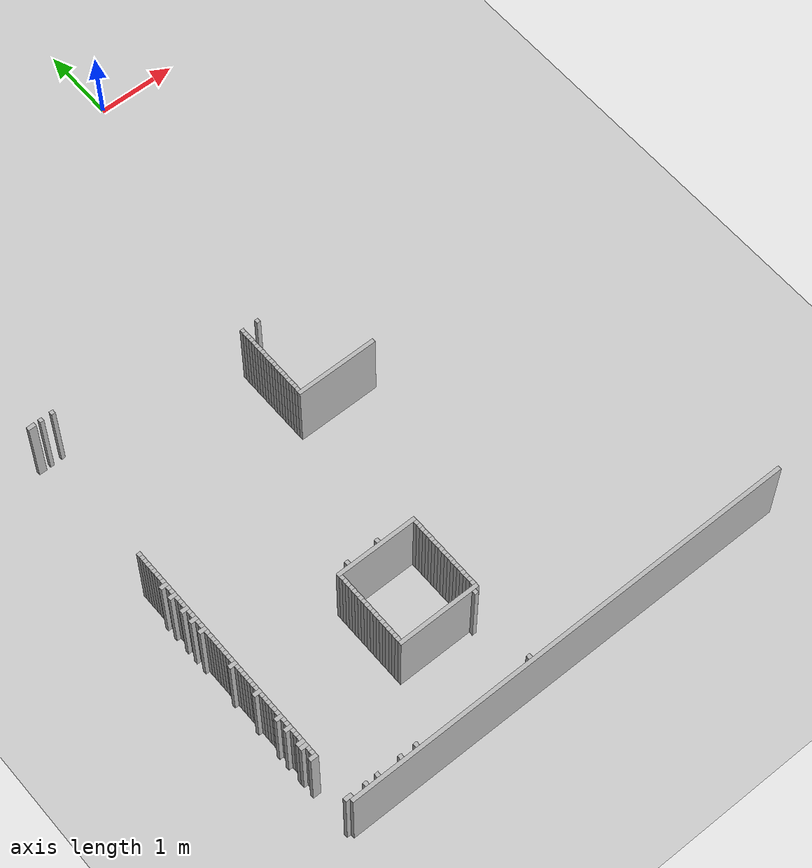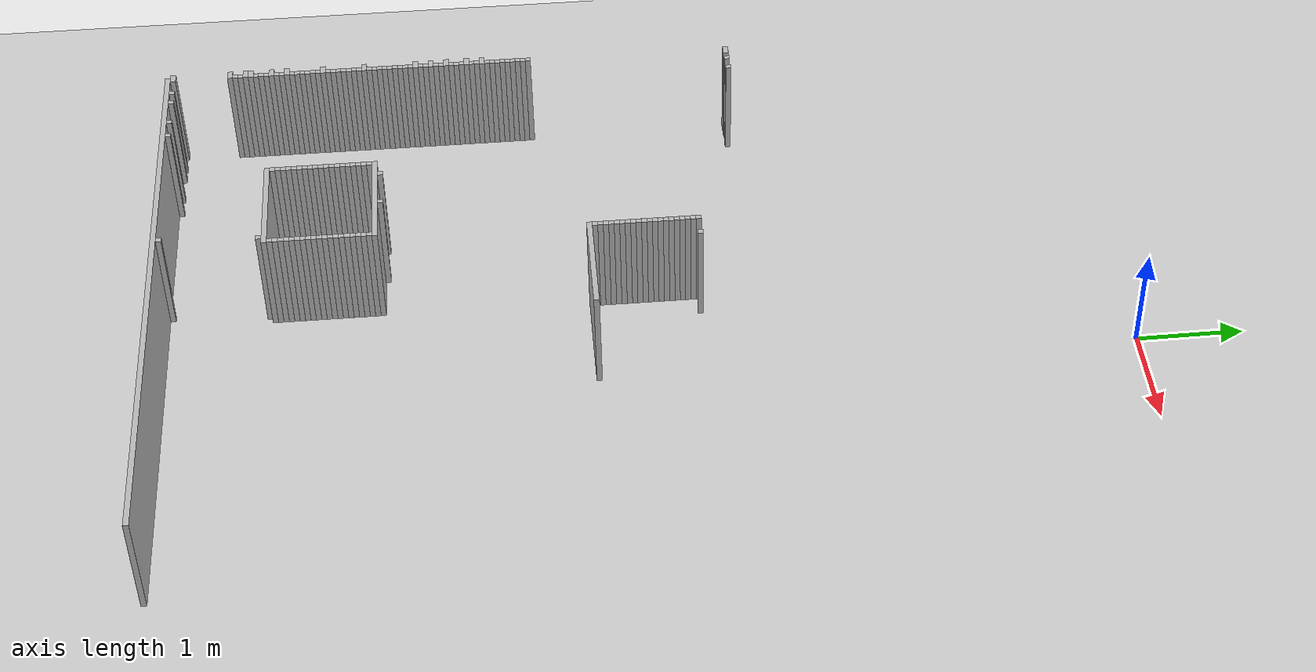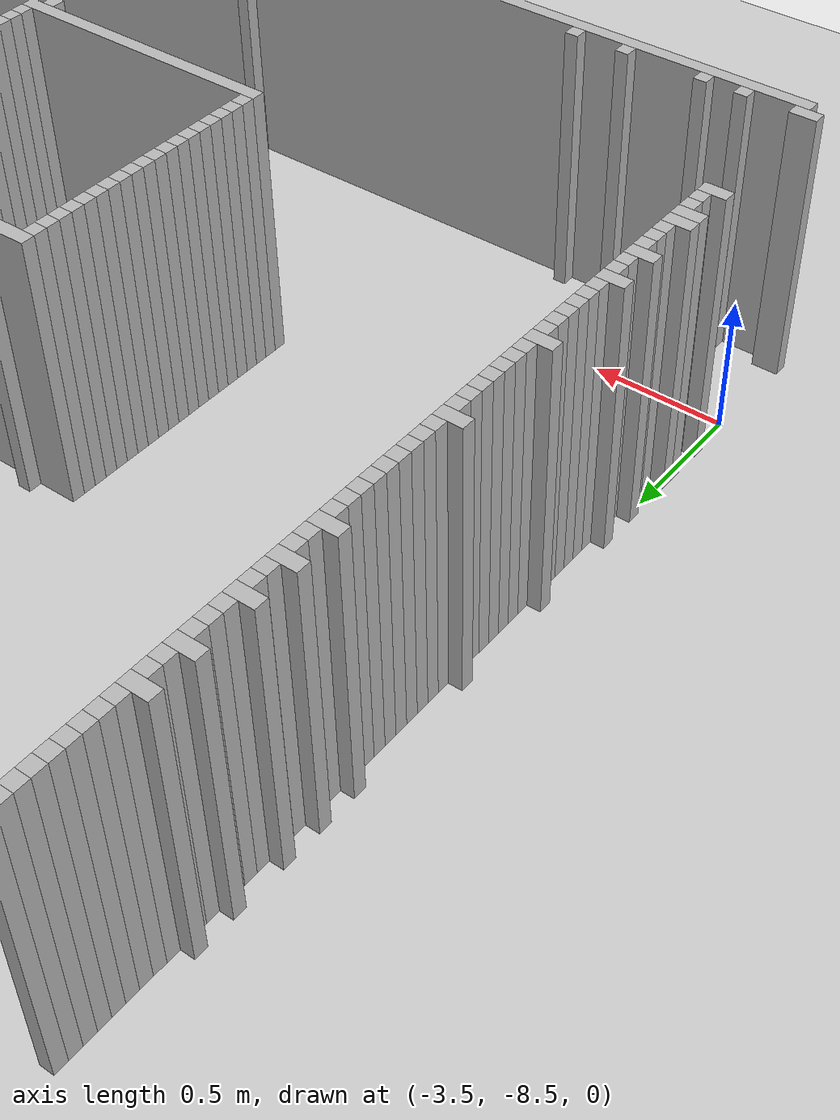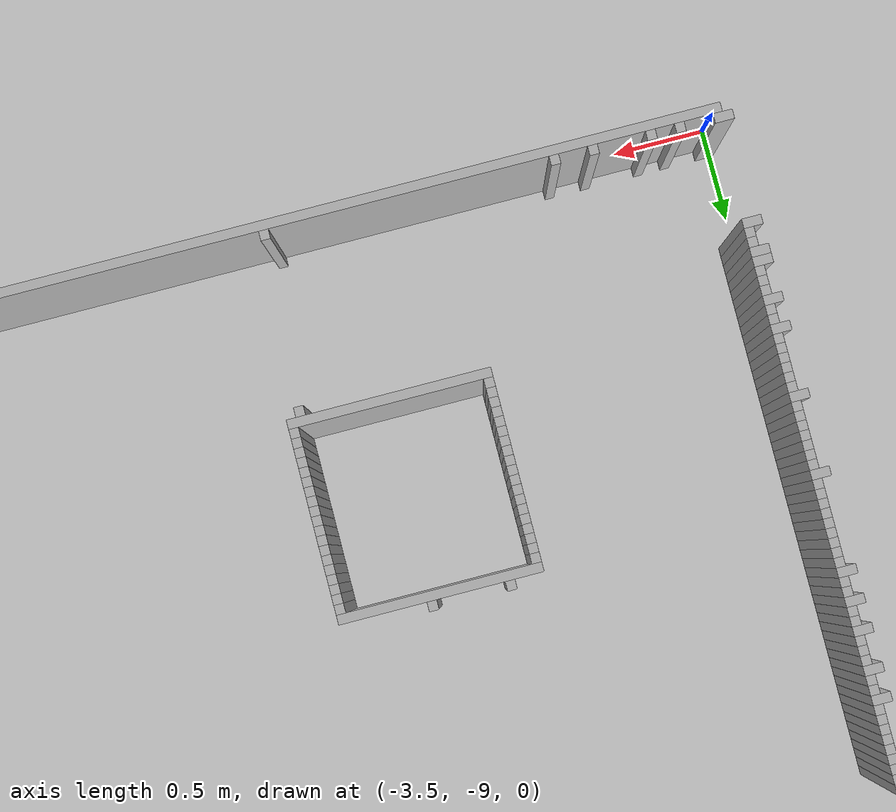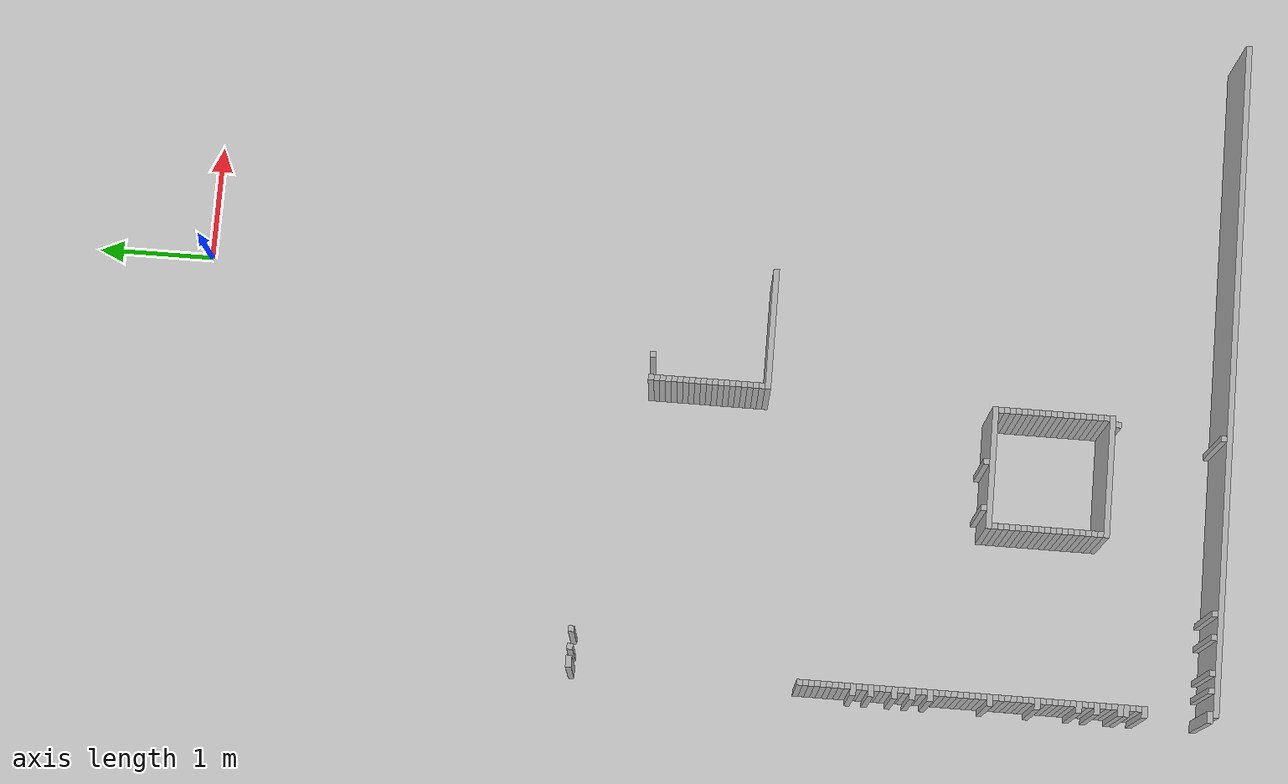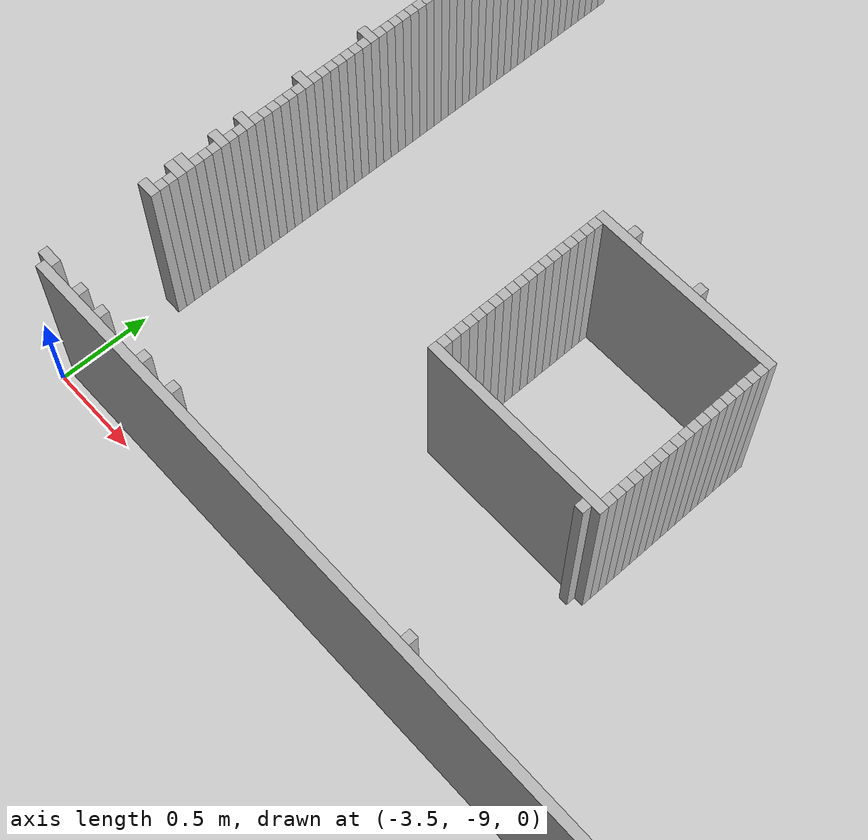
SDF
<sdf version="1.6">
 <world name="udh1_world">
  <include><uri>model://ground_plane</uri></include>
  <include><uri>model://sun</uri></include>
  <model name="wall_1834">
   <static>true</static>
   <pose>-3.419999999999999 -3.4800000000000004 0.5 0 0 0</pose>
   <link name="link">
    <collision name="col"><geometry><box><size>0.1 0.05 1</size></box></geometry></collision>
    <visual name="vis"><geometry><box><size>0.1 0.05 1</size></box></geometry></visual>
   </link>
  </model>
  <model name="wall_1835">
   <static>true</static>
   <pose>-3.294999999999999 -3.4800000000000004 0.5 0 0 0</pose>
   <link name="link">
    <collision name="col"><geometry><box><size>0.05 0.05 1</size></box></geometry></collision>
    <visual name="vis"><geometry><box><size>0.05 0.05 1</size></box></geometry></visual>
   </link>
  </model>
  <model name="wall_1836">
   <static>true</static>
   <pose>-3.1449999999999996 -3.4800000000000004 0.5 0 0 0</pose>
   <link name="link">
    <collision name="col"><geometry><box><size>0.05 0.05 1</size></box></geometry></collision>
    <visual name="vis"><geometry><box><size>0.05 0.05 1</size></box></geometry></visual>
   </link>
  </model>
  <model name="wall_1900">
   <static>true</static>
   <pose>-0.9449999999999985 -3.9800000000000004 0.5 0 0 0</pose>
   <link name="link">
    <collision name="col"><geometry><box><size>0.05 0.05 1</size></box></geometry></collision>
    <visual name="vis"><geometry><box><size>0.05 0.05 1</size></box></geometry></visual>
   </link>
  </model>
  <model name="wall_1901">
   <static>true</static>
   <pose>-0.7449999999999992 -3.9800000000000004 0.5 0 0 0</pose>
   <link name="link">
    <collision name="col"><geometry><box><size>0.05 0.05 1</size></box></geometry></collision>
    <visual name="vis"><geometry><box><size>0.05 0.05 1</size></box></geometry></visual>
   </link>
  </model>
  <model name="wall_1909">
   <static>true</static>
   <pose>-0.9449999999999985 -4.03 0.5 0 0 0</pose>
   <link name="link">
    <collision name="col"><geometry><box><size>0.05 0.05 1</size></box></geometry></collision>
    <visual name="vis"><geometry><box><size>0.05 0.05 1</size></box></geometry></visual>
   </link>
  </model>
  <model name="wall_1917">
   <static>true</static>
   <pose>-0.9449999999999985 -4.08 0.5 0 0 0</pose>
   <link name="link">
    <collision name="col"><geometry><box><size>0.05 0.05 1</size></box></geometry></collision>
    <visual name="vis"><geometry><box><size>0.05 0.05 1</size></box></geometry></visual>
   </link>
  </model>
  <model name="wall_1925">
   <static>true</static>
   <pose>-0.9449999999999985 -4.130000000000001 0.5 0 0 0</pose>
   <link name="link">
    <collision name="col"><geometry><box><size>0.05 0.05 1</size></box></geometry></collision>
    <visual name="vis"><geometry><box><size>0.05 0.05 1</size></box></geometry></visual>
   </link>
  </model>
  <model name="wall_1933">
   <static>true</static>
   <pose>-0.9449999999999985 -4.180000000000001 0.5 0 0 0</pose>
   <link name="link">
    <collision name="col"><geometry><box><size>0.05 0.05 1</size></box></geometry></collision>
    <visual name="vis"><geometry><box><size>0.05 0.05 1</size></box></geometry></visual>
   </link>
  </model>
  <model name="wall_1941">
   <static>true</static>
   <pose>-0.9449999999999985 -4.23 0.5 0 0 0</pose>
   <link name="link">
    <collision name="col"><geometry><box><size>0.05 0.05 1</size></box></geometry></collision>
    <visual name="vis"><geometry><box><size>0.05 0.05 1</size></box></geometry></visual>
   </link>
  </model>
  <model name="wall_1949">
   <static>true</static>
   <pose>-0.9449999999999985 -4.28 0.5 0 0 0</pose>
   <link name="link">
    <collision name="col"><geometry><box><size>0.05 0.05 1</size></box></geometry></collision>
    <visual name="vis"><geometry><box><size>0.05 0.05 1</size></box></geometry></visual>
   </link>
  </model>
  <model name="wall_1957">
   <static>true</static>
   <pose>-0.9449999999999985 -4.33 0.5 0 0 0</pose>
   <link name="link">
    <collision name="col"><geometry><box><size>0.05 0.05 1</size></box></geometry></collision>
    <visual name="vis"><geometry><box><size>0.05 0.05 1</size></box></geometry></visual>
   </link>
  </model>
  <model name="wall_1965">
   <static>true</static>
   <pose>-0.9449999999999985 -4.380000000000001 0.5 0 0 0</pose>
   <link name="link">
    <collision name="col"><geometry><box><size>0.05 0.05 1</size></box></geometry></collision>
    <visual name="vis"><geometry><box><size>0.05 0.05 1</size></box></geometry></visual>
   </link>
  </model>
  <model name="wall_1973">
   <static>true</static>
   <pose>-0.9449999999999985 -4.430000000000001 0.5 0 0 0</pose>
   <link name="link">
    <collision name="col"><geometry><box><size>0.05 0.05 1</size></box></geometry></collision>
    <visual name="vis"><geometry><box><size>0.05 0.05 1</size></box></geometry></visual>
   </link>
  </model>
  <model name="wall_1981">
   <static>true</static>
   <pose>-0.9449999999999985 -4.48 0.5 0 0 0</pose>
   <link name="link">
    <collision name="col"><geometry><box><size>0.05 0.05 1</size></box></geometry></collision>
    <visual name="vis"><geometry><box><size>0.05 0.05 1</size></box></geometry></visual>
   </link>
  </model>
  <model name="wall_1989">
   <static>true</static>
   <pose>-0.9449999999999985 -4.53 0.5 0 0 0</pose>
   <link name="link">
    <collision name="col"><geometry><box><size>0.05 0.05 1</size></box></geometry></collision>
    <visual name="vis"><geometry><box><size>0.05 0.05 1</size></box></geometry></visual>
   </link>
  </model>
  <model name="wall_1997">
   <static>true</static>
   <pose>-0.9449999999999985 -4.580000000000001 0.5 0 0 0</pose>
   <link name="link">
    <collision name="col"><geometry><box><size>0.05 0.05 1</size></box></geometry></collision>
    <visual name="vis"><geometry><box><size>0.05 0.05 1</size></box></geometry></visual>
   </link>
  </model>
  <model name="wall_2004">
   <static>true</static>
   <pose>-0.9449999999999985 -4.630000000000001 0.5 0 0 0</pose>
   <link name="link">
    <collision name="col"><geometry><box><size>0.05 0.05 1</size></box></geometry></collision>
    <visual name="vis"><geometry><box><size>0.05 0.05 1</size></box></geometry></visual>
   </link>
  </model>
  <model name="wall_2012">
   <static>true</static>
   <pose>-0.9449999999999985 -4.680000000000001 0.5 0 0 0</pose>
   <link name="link">
    <collision name="col"><geometry><box><size>0.05 0.05 1</size></box></geometry></collision>
    <visual name="vis"><geometry><box><size>0.05 0.05 1</size></box></geometry></visual>
   </link>
  </model>
  <model name="wall_2020">
   <static>true</static>
   <pose>-0.9449999999999985 -4.73 0.5 0 0 0</pose>
   <link name="link">
    <collision name="col"><geometry><box><size>0.05 0.05 1</size></box></geometry></collision>
    <visual name="vis"><geometry><box><size>0.05 0.05 1</size></box></geometry></visual>
   </link>
  </model>
  <model name="wall_2028">
   <static>true</static>
   <pose>-0.9449999999999985 -4.78 0.5 0 0 0</pose>
   <link name="link">
    <collision name="col"><geometry><box><size>0.05 0.05 1</size></box></geometry></collision>
    <visual name="vis"><geometry><box><size>0.05 0.05 1</size></box></geometry></visual>
   </link>
  </model>
  <model name="wall_2036">
   <static>true</static>
   <pose>-0.9449999999999985 -4.830000000000001 0.5 0 0 0</pose>
   <link name="link">
    <collision name="col"><geometry><box><size>0.05 0.05 1</size></box></geometry></collision>
    <visual name="vis"><geometry><box><size>0.05 0.05 1</size></box></geometry></visual>
   </link>
  </model>
  <model name="wall_2044">
   <static>true</static>
   <pose>-0.9449999999999985 -4.880000000000001 0.5 0 0 0</pose>
   <link name="link">
    <collision name="col"><geometry><box><size>0.05 0.05 1</size></box></geometry></collision>
    <visual name="vis"><geometry><box><size>0.05 0.05 1</size></box></geometry></visual>
   </link>
  </model>
  <model name="wall_2052">
   <static>true</static>
   <pose>-0.9449999999999985 -4.930000000000001 0.5 0 0 0</pose>
   <link name="link">
    <collision name="col"><geometry><box><size>0.05 0.05 1</size></box></geometry></collision>
    <visual name="vis"><geometry><box><size>0.05 0.05 1</size></box></geometry></visual>
   </link>
  </model>
  <model name="wall_2060">
   <static>true</static>
   <pose>-0.4449999999999985 -4.98 0.5 0 0 0</pose>
   <link name="link">
    <collision name="col"><geometry><box><size>1.05 0.05 1</size></box></geometry></collision>
    <visual name="vis"><geometry><box><size>1.05 0.05 1</size></box></geometry></visual>
   </link>
  </model>
  <model name="wall_2123">
   <static>true</static>
   <pose>-3.4449999999999994 -5.430000000000001 0.5 0 0 0</pose>
   <link name="link">
    <collision name="col"><geometry><box><size>0.05 0.05 1</size></box></geometry></collision>
    <visual name="vis"><geometry><box><size>0.05 0.05 1</size></box></geometry></visual>
   </link>
  </model>
  <model name="wall_2131">
   <static>true</static>
   <pose>-3.4449999999999994 -5.48 0.5 0 0 0</pose>
   <link name="link">
    <collision name="col"><geometry><box><size>0.05 0.05 1</size></box></geometry></collision>
    <visual name="vis"><geometry><box><size>0.05 0.05 1</size></box></geometry></visual>
   </link>
  </model>
  <model name="wall_2142">
   <static>true</static>
   <pose>-3.4449999999999994 -5.530000000000001 0.5 0 0 0</pose>
   <link name="link">
    <collision name="col"><geometry><box><size>0.05 0.05 1</size></box></geometry></collision>
    <visual name="vis"><geometry><box><size>0.05 0.05 1</size></box></geometry></visual>
   </link>
  </model>
  <model name="wall_2150">
   <static>true</static>
   <pose>-3.4449999999999994 -5.58 0.5 0 0 0</pose>
   <link name="link">
    <collision name="col"><geometry><box><size>0.05 0.05 1</size></box></geometry></collision>
    <visual name="vis"><geometry><box><size>0.05 0.05 1</size></box></geometry></visual>
   </link>
  </model>
  <model name="wall_2158">
   <static>true</static>
   <pose>-3.4449999999999994 -5.630000000000001 0.5 0 0 0</pose>
   <link name="link">
    <collision name="col"><geometry><box><size>0.05 0.05 1</size></box></geometry></collision>
    <visual name="vis"><geometry><box><size>0.05 0.05 1</size></box></geometry></visual>
   </link>
  </model>
  <model name="wall_2166">
   <static>true</static>
   <pose>-3.4449999999999994 -5.680000000000001 0.5 0 0 0</pose>
   <link name="link">
    <collision name="col"><geometry><box><size>0.05 0.05 1</size></box></geometry></collision>
    <visual name="vis"><geometry><box><size>0.05 0.05 1</size></box></geometry></visual>
   </link>
  </model>
  <model name="wall_2174">
   <static>true</static>
   <pose>-3.4449999999999994 -5.73 0.5 0 0 0</pose>
   <link name="link">
    <collision name="col"><geometry><box><size>0.05 0.05 1</size></box></geometry></collision>
    <visual name="vis"><geometry><box><size>0.05 0.05 1</size></box></geometry></visual>
   </link>
  </model>
  <model name="wall_2182">
   <static>true</static>
   <pose>-3.4449999999999994 -5.780000000000001 0.5 0 0 0</pose>
   <link name="link">
    <collision name="col"><geometry><box><size>0.05 0.05 1</size></box></geometry></collision>
    <visual name="vis"><geometry><box><size>0.05 0.05 1</size></box></geometry></visual>
   </link>
  </model>
  <model name="wall_2190">
   <static>true</static>
   <pose>-3.4449999999999994 -5.83 0.5 0 0 0</pose>
   <link name="link">
    <collision name="col"><geometry><box><size>0.05 0.05 1</size></box></geometry></collision>
    <visual name="vis"><geometry><box><size>0.05 0.05 1</size></box></geometry></visual>
   </link>
  </model>
  <model name="wall_2198">
   <static>true</static>
   <pose>-3.469999999999999 -5.880000000000001 0.5 0 0 0</pose>
   <link name="link">
    <collision name="col"><geometry><box><size>0.1 0.05 1</size></box></geometry></collision>
    <visual name="vis"><geometry><box><size>0.1 0.05 1</size></box></geometry></visual>
   </link>
  </model>
  <model name="wall_2206">
   <static>true</static>
   <pose>-3.4449999999999994 -5.930000000000001 0.5 0 0 0</pose>
   <link name="link">
    <collision name="col"><geometry><box><size>0.05 0.05 1</size></box></geometry></collision>
    <visual name="vis"><geometry><box><size>0.05 0.05 1</size></box></geometry></visual>
   </link>
  </model>
  <model name="wall_2214">
   <static>true</static>
   <pose>-3.4449999999999994 -5.98 0.5 0 0 0</pose>
   <link name="link">
    <collision name="col"><geometry><box><size>0.05 0.05 1</size></box></geometry></collision>
    <visual name="vis"><geometry><box><size>0.05 0.05 1</size></box></geometry></visual>
   </link>
  </model>
  <model name="wall_2222">
   <static>true</static>
   <pose>-3.469999999999999 -6.030000000000001 0.5 0 0 0</pose>
   <link name="link">
    <collision name="col"><geometry><box><size>0.1 0.05 1</size></box></geometry></collision>
    <visual name="vis"><geometry><box><size>0.1 0.05 1</size></box></geometry></visual>
   </link>
  </model>
  <model name="wall_2230">
   <static>true</static>
   <pose>-3.4449999999999994 -6.08 0.5 0 0 0</pose>
   <link name="link">
    <collision name="col"><geometry><box><size>0.05 0.05 1</size></box></geometry></collision>
    <visual name="vis"><geometry><box><size>0.05 0.05 1</size></box></geometry></visual>
   </link>
  </model>
  <model name="wall_2238">
   <static>true</static>
   <pose>-3.4449999999999994 -6.130000000000001 0.5 0 0 0</pose>
   <link name="link">
    <collision name="col"><geometry><box><size>0.05 0.05 1</size></box></geometry></collision>
    <visual name="vis"><geometry><box><size>0.05 0.05 1</size></box></geometry></visual>
   </link>
  </model>
  <model name="wall_2246">
   <static>true</static>
   <pose>-3.4449999999999994 -6.180000000000001 0.5 0 0 0</pose>
   <link name="link">
    <collision name="col"><geometry><box><size>0.05 0.05 1</size></box></geometry></collision>
    <visual name="vis"><geometry><box><size>0.05 0.05 1</size></box></geometry></visual>
   </link>
  </model>
  <model name="wall_2254">
   <static>true</static>
   <pose>-3.469999999999999 -6.23 0.5 0 0 0</pose>
   <link name="link">
    <collision name="col"><geometry><box><size>0.1 0.05 1</size></box></geometry></collision>
    <visual name="vis"><geometry><box><size>0.1 0.05 1</size></box></geometry></visual>
   </link>
  </model>
  <model name="wall_2262">
   <static>true</static>
   <pose>-3.4449999999999994 -6.280000000000001 0.5 0 0 0</pose>
   <link name="link">
    <collision name="col"><geometry><box><size>0.05 0.05 1</size></box></geometry></collision>
    <visual name="vis"><geometry><box><size>0.05 0.05 1</size></box></geometry></visual>
   </link>
  </model>
  <model name="wall_2270">
   <static>true</static>
   <pose>-3.4449999999999994 -6.33 0.5 0 0 0</pose>
   <link name="link">
    <collision name="col"><geometry><box><size>0.05 0.05 1</size></box></geometry></collision>
    <visual name="vis"><geometry><box><size>0.05 0.05 1</size></box></geometry></visual>
   </link>
  </model>
  <model name="wall_2278">
   <static>true</static>
   <pose>-3.469999999999999 -6.380000000000001 0.5 0 0 0</pose>
   <link name="link">
    <collision name="col"><geometry><box><size>0.1 0.05 1</size></box></geometry></collision>
    <visual name="vis"><geometry><box><size>0.1 0.05 1</size></box></geometry></visual>
   </link>
  </model>
  <model name="wall_2285">
   <static>true</static>
   <pose>-3.4449999999999994 -6.430000000000001 0.5 0 0 0</pose>
   <link name="link">
    <collision name="col"><geometry><box><size>0.05 0.05 1</size></box></geometry></collision>
    <visual name="vis"><geometry><box><size>0.05 0.05 1</size></box></geometry></visual>
   </link>
  </model>
  <model name="wall_2291">
   <static>true</static>
   <pose>-3.4449999999999994 -6.48 0.5 0 0 0</pose>
   <link name="link">
    <collision name="col"><geometry><box><size>0.05 0.05 1</size></box></geometry></collision>
    <visual name="vis"><geometry><box><size>0.05 0.05 1</size></box></geometry></visual>
   </link>
  </model>
  <model name="wall_2297">
   <static>true</static>
   <pose>-3.469999999999999 -6.530000000000001 0.5 0 0 0</pose>
   <link name="link">
    <collision name="col"><geometry><box><size>0.1 0.05 1</size></box></geometry></collision>
    <visual name="vis"><geometry><box><size>0.1 0.05 1</size></box></geometry></visual>
   </link>
  </model>
  <model name="wall_2303">
   <static>true</static>
   <pose>-3.4449999999999994 -6.58 0.5 0 0 0</pose>
   <link name="link">
    <collision name="col"><geometry><box><size>0.05 0.05 1</size></box></geometry></collision>
    <visual name="vis"><geometry><box><size>0.05 0.05 1</size></box></geometry></visual>
   </link>
  </model>
  <model name="wall_2308">
   <static>true</static>
   <pose>-3.4449999999999994 -6.630000000000001 0.5 0 0 0</pose>
   <link name="link">
    <collision name="col"><geometry><box><size>0.05 0.05 1</size></box></geometry></collision>
    <visual name="vis"><geometry><box><size>0.05 0.05 1</size></box></geometry></visual>
   </link>
  </model>
  <model name="wall_2314">
   <static>true</static>
   <pose>-3.4449999999999994 -6.680000000000001 0.5 0 0 0</pose>
   <link name="link">
    <collision name="col"><geometry><box><size>0.05 0.05 1</size></box></geometry></collision>
    <visual name="vis"><geometry><box><size>0.05 0.05 1</size></box></geometry></visual>
   </link>
  </model>
  <model name="wall_2318">
   <static>true</static>
   <pose>-3.4449999999999994 -6.73 0.5 0 0 0</pose>
   <link name="link">
    <collision name="col"><geometry><box><size>0.05 0.05 1</size></box></geometry></collision>
    <visual name="vis"><geometry><box><size>0.05 0.05 1</size></box></geometry></visual>
   </link>
  </model>
  <model name="wall_2322">
   <static>true</static>
   <pose>-3.4449999999999994 -6.780000000000001 0.5 0 0 0</pose>
   <link name="link">
    <collision name="col"><geometry><box><size>0.05 0.05 1</size></box></geometry></collision>
    <visual name="vis"><geometry><box><size>0.05 0.05 1</size></box></geometry></visual>
   </link>
  </model>
  <model name="wall_2326">
   <static>true</static>
   <pose>-3.4449999999999994 -6.83 0.5 0 0 0</pose>
   <link name="link">
    <collision name="col"><geometry><box><size>0.05 0.05 1</size></box></geometry></collision>
    <visual name="vis"><geometry><box><size>0.05 0.05 1</size></box></geometry></visual>
   </link>
  </model>
  <model name="wall_2330">
   <static>true</static>
   <pose>-3.4449999999999994 -6.880000000000001 0.5 0 0 0</pose>
   <link name="link">
    <collision name="col"><geometry><box><size>0.05 0.05 1</size></box></geometry></collision>
    <visual name="vis"><geometry><box><size>0.05 0.05 1</size></box></geometry></visual>
   </link>
  </model>
  <model name="wall_2331">
   <static>true</static>
   <pose>-1.8449999999999989 -6.880000000000001 0.5 0 0 0</pose>
   <link name="link">
    <collision name="col"><geometry><box><size>0.05 0.05 1</size></box></geometry></collision>
    <visual name="vis"><geometry><box><size>0.05 0.05 1</size></box></geometry></visual>
   </link>
  </model>
  <model name="wall_2332">
   <static>true</static>
   <pose>-1.4449999999999994 -6.880000000000001 0.5 0 0 0</pose>
   <link name="link">
    <collision name="col"><geometry><box><size>0.05 0.05 1</size></box></geometry></collision>
    <visual name="vis"><geometry><box><size>0.05 0.05 1</size></box></geometry></visual>
   </link>
  </model>
  <model name="wall_2336">
   <static>true</static>
   <pose>-3.4449999999999994 -6.930000000000001 0.5 0 0 0</pose>
   <link name="link">
    <collision name="col"><geometry><box><size>0.05 0.05 1</size></box></geometry></collision>
    <visual name="vis"><geometry><box><size>0.05 0.05 1</size></box></geometry></visual>
   </link>
  </model>
  <model name="wall_2337">
   <static>true</static>
   <pose>-1.4949999999999992 -6.930000000000001 0.5 0 0 0</pose>
   <link name="link">
    <collision name="col"><geometry><box><size>1.05 0.05 1</size></box></geometry></collision>
    <visual name="vis"><geometry><box><size>1.05 0.05 1</size></box></geometry></visual>
   </link>
  </model>
  <model name="wall_2341">
   <static>true</static>
   <pose>-3.4449999999999994 -6.98 0.5 0 0 0</pose>
   <link name="link">
    <collision name="col"><geometry><box><size>0.05 0.05 1</size></box></geometry></collision>
    <visual name="vis"><geometry><box><size>0.05 0.05 1</size></box></geometry></visual>
   </link>
  </model>
  <model name="wall_2342">
   <static>true</static>
   <pose>-1.9949999999999992 -6.98 0.5 0 0 0</pose>
   <link name="link">
    <collision name="col"><geometry><box><size>0.05 0.05 1</size></box></geometry></collision>
    <visual name="vis"><geometry><box><size>0.05 0.05 1</size></box></geometry></visual>
   </link>
  </model>
  <model name="wall_2343">
   <static>true</static>
   <pose>-0.9949999999999992 -6.98 0.5 0 0 0</pose>
   <link name="link">
    <collision name="col"><geometry><box><size>0.05 0.05 1</size></box></geometry></collision>
    <visual name="vis"><geometry><box><size>0.05 0.05 1</size></box></geometry></visual>
   </link>
  </model>
  <model name="wall_2347">
   <static>true</static>
   <pose>-3.469999999999999 -7.030000000000001 0.5 0 0 0</pose>
   <link name="link">
    <collision name="col"><geometry><box><size>0.1 0.05 1</size></box></geometry></collision>
    <visual name="vis"><geometry><box><size>0.1 0.05 1</size></box></geometry></visual>
   </link>
  </model>
  <model name="wall_2348">
   <static>true</static>
   <pose>-1.9949999999999992 -7.030000000000001 0.5 0 0 0</pose>
   <link name="link">
    <collision name="col"><geometry><box><size>0.05 0.05 1</size></box></geometry></collision>
    <visual name="vis"><geometry><box><size>0.05 0.05 1</size></box></geometry></visual>
   </link>
  </model>
  <model name="wall_2349">
   <static>true</static>
   <pose>-0.9949999999999992 -7.030000000000001 0.5 0 0 0</pose>
   <link name="link">
    <collision name="col"><geometry><box><size>0.05 0.05 1</size></box></geometry></collision>
    <visual name="vis"><geometry><box><size>0.05 0.05 1</size></box></geometry></visual>
   </link>
  </model>
  <model name="wall_2353">
   <static>true</static>
   <pose>-3.4449999999999994 -7.08 0.5 0 0 0</pose>
   <link name="link">
    <collision name="col"><geometry><box><size>0.05 0.05 1</size></box></geometry></collision>
    <visual name="vis"><geometry><box><size>0.05 0.05 1</size></box></geometry></visual>
   </link>
  </model>
  <model name="wall_2354">
   <static>true</static>
   <pose>-1.9949999999999992 -7.08 0.5 0 0 0</pose>
   <link name="link">
    <collision name="col"><geometry><box><size>0.05 0.05 1</size></box></geometry></collision>
    <visual name="vis"><geometry><box><size>0.05 0.05 1</size></box></geometry></visual>
   </link>
  </model>
  <model name="wall_2355">
   <static>true</static>
   <pose>-0.9949999999999992 -7.08 0.5 0 0 0</pose>
   <link name="link">
    <collision name="col"><geometry><box><size>0.05 0.05 1</size></box></geometry></collision>
    <visual name="vis"><geometry><box><size>0.05 0.05 1</size></box></geometry></visual>
   </link>
  </model>
  <model name="wall_2359">
   <static>true</static>
   <pose>-3.4449999999999994 -7.130000000000001 0.5 0 0 0</pose>
   <link name="link">
    <collision name="col"><geometry><box><size>0.05 0.05 1</size></box></geometry></collision>
    <visual name="vis"><geometry><box><size>0.05 0.05 1</size></box></geometry></visual>
   </link>
  </model>
  <model name="wall_2360">
   <static>true</static>
   <pose>-1.9949999999999992 -7.130000000000001 0.5 0 0 0</pose>
   <link name="link">
    <collision name="col"><geometry><box><size>0.05 0.05 1</size></box></geometry></collision>
    <visual name="vis"><geometry><box><size>0.05 0.05 1</size></box></geometry></visual>
   </link>
  </model>
  <model name="wall_2361">
   <static>true</static>
   <pose>-0.9949999999999992 -7.130000000000001 0.5 0 0 0</pose>
   <link name="link">
    <collision name="col"><geometry><box><size>0.05 0.05 1</size></box></geometry></collision>
    <visual name="vis"><geometry><box><size>0.05 0.05 1</size></box></geometry></visual>
   </link>
  </model>
  <model name="wall_2365">
   <static>true</static>
   <pose>-3.4449999999999994 -7.180000000000001 0.5 0 0 0</pose>
   <link name="link">
    <collision name="col"><geometry><box><size>0.05 0.05 1</size></box></geometry></collision>
    <visual name="vis"><geometry><box><size>0.05 0.05 1</size></box></geometry></visual>
   </link>
  </model>
  <model name="wall_2366">
   <static>true</static>
   <pose>-1.9949999999999992 -7.180000000000001 0.5 0 0 0</pose>
   <link name="link">
    <collision name="col"><geometry><box><size>0.05 0.05 1</size></box></geometry></collision>
    <visual name="vis"><geometry><box><size>0.05 0.05 1</size></box></geometry></visual>
   </link>
  </model>
  <model name="wall_2367">
   <static>true</static>
   <pose>-0.9949999999999992 -7.180000000000001 0.5 0 0 0</pose>
   <link name="link">
    <collision name="col"><geometry><box><size>0.05 0.05 1</size></box></geometry></collision>
    <visual name="vis"><geometry><box><size>0.05 0.05 1</size></box></geometry></visual>
   </link>
  </model>
  <model name="wall_2371">
   <static>true</static>
   <pose>-3.4449999999999994 -7.23 0.5 0 0 0</pose>
   <link name="link">
    <collision name="col"><geometry><box><size>0.05 0.05 1</size></box></geometry></collision>
    <visual name="vis"><geometry><box><size>0.05 0.05 1</size></box></geometry></visual>
   </link>
  </model>
  <model name="wall_2372">
   <static>true</static>
   <pose>-1.9949999999999992 -7.23 0.5 0 0 0</pose>
   <link name="link">
    <collision name="col"><geometry><box><size>0.05 0.05 1</size></box></geometry></collision>
    <visual name="vis"><geometry><box><size>0.05 0.05 1</size></box></geometry></visual>
   </link>
  </model>
  <model name="wall_2373">
   <static>true</static>
   <pose>-0.9949999999999992 -7.23 0.5 0 0 0</pose>
   <link name="link">
    <collision name="col"><geometry><box><size>0.05 0.05 1</size></box></geometry></collision>
    <visual name="vis"><geometry><box><size>0.05 0.05 1</size></box></geometry></visual>
   </link>
  </model>
  <model name="wall_2377">
   <static>true</static>
   <pose>-3.4449999999999994 -7.280000000000001 0.5 0 0 0</pose>
   <link name="link">
    <collision name="col"><geometry><box><size>0.05 0.05 1</size></box></geometry></collision>
    <visual name="vis"><geometry><box><size>0.05 0.05 1</size></box></geometry></visual>
   </link>
  </model>
  <model name="wall_2378">
   <static>true</static>
   <pose>-1.9949999999999992 -7.280000000000001 0.5 0 0 0</pose>
   <link name="link">
    <collision name="col"><geometry><box><size>0.05 0.05 1</size></box></geometry></collision>
    <visual name="vis"><geometry><box><size>0.05 0.05 1</size></box></geometry></visual>
   </link>
  </model>
  <model name="wall_2379">
   <static>true</static>
   <pose>-0.9949999999999992 -7.280000000000001 0.5 0 0 0</pose>
   <link name="link">
    <collision name="col"><geometry><box><size>0.05 0.05 1</size></box></geometry></collision>
    <visual name="vis"><geometry><box><size>0.05 0.05 1</size></box></geometry></visual>
   </link>
  </model>
  <model name="wall_2383">
   <static>true</static>
   <pose>-3.4449999999999994 -7.330000000000001 0.5 0 0 0</pose>
   <link name="link">
    <collision name="col"><geometry><box><size>0.05 0.05 1</size></box></geometry></collision>
    <visual name="vis"><geometry><box><size>0.05 0.05 1</size></box></geometry></visual>
   </link>
  </model>
  <model name="wall_2384">
   <static>true</static>
   <pose>-1.9949999999999992 -7.330000000000001 0.5 0 0 0</pose>
   <link name="link">
    <collision name="col"><geometry><box><size>0.05 0.05 1</size></box></geometry></collision>
    <visual name="vis"><geometry><box><size>0.05 0.05 1</size></box></geometry></visual>
   </link>
  </model>
  <model name="wall_2385">
   <static>true</static>
   <pose>-0.9949999999999992 -7.330000000000001 0.5 0 0 0</pose>
   <link name="link">
    <collision name="col"><geometry><box><size>0.05 0.05 1</size></box></geometry></collision>
    <visual name="vis"><geometry><box><size>0.05 0.05 1</size></box></geometry></visual>
   </link>
  </model>
  <model name="wall_2389">
   <static>true</static>
   <pose>-3.4449999999999994 -7.380000000000001 0.5 0 0 0</pose>
   <link name="link">
    <collision name="col"><geometry><box><size>0.05 0.05 1</size></box></geometry></collision>
    <visual name="vis"><geometry><box><size>0.05 0.05 1</size></box></geometry></visual>
   </link>
  </model>
  <model name="wall_2390">
   <static>true</static>
   <pose>-1.9949999999999992 -7.380000000000001 0.5 0 0 0</pose>
   <link name="link">
    <collision name="col"><geometry><box><size>0.05 0.05 1</size></box></geometry></collision>
    <visual name="vis"><geometry><box><size>0.05 0.05 1</size></box></geometry></visual>
   </link>
  </model>
  <model name="wall_2391">
   <static>true</static>
   <pose>-0.9949999999999992 -7.380000000000001 0.5 0 0 0</pose>
   <link name="link">
    <collision name="col"><geometry><box><size>0.05 0.05 1</size></box></geometry></collision>
    <visual name="vis"><geometry><box><size>0.05 0.05 1</size></box></geometry></visual>
   </link>
  </model>
  <model name="wall_2395">
   <static>true</static>
   <pose>-3.469999999999999 -7.430000000000001 0.5 0 0 0</pose>
   <link name="link">
    <collision name="col"><geometry><box><size>0.1 0.05 1</size></box></geometry></collision>
    <visual name="vis"><geometry><box><size>0.1 0.05 1</size></box></geometry></visual>
   </link>
  </model>
  <model name="wall_2396">
   <static>true</static>
   <pose>-1.9949999999999992 -7.430000000000001 0.5 0 0 0</pose>
   <link name="link">
    <collision name="col"><geometry><box><size>0.05 0.05 1</size></box></geometry></collision>
    <visual name="vis"><geometry><box><size>0.05 0.05 1</size></box></geometry></visual>
   </link>
  </model>
  <model name="wall_2397">
   <static>true</static>
   <pose>-0.9949999999999992 -7.430000000000001 0.5 0 0 0</pose>
   <link name="link">
    <collision name="col"><geometry><box><size>0.05 0.05 1</size></box></geometry></collision>
    <visual name="vis"><geometry><box><size>0.05 0.05 1</size></box></geometry></visual>
   </link>
  </model>
  <model name="wall_2401">
   <static>true</static>
   <pose>-3.4449999999999994 -7.48 0.5 0 0 0</pose>
   <link name="link">
    <collision name="col"><geometry><box><size>0.05 0.05 1</size></box></geometry></collision>
    <visual name="vis"><geometry><box><size>0.05 0.05 1</size></box></geometry></visual>
   </link>
  </model>
  <model name="wall_2402">
   <static>true</static>
   <pose>-1.9949999999999992 -7.48 0.5 0 0 0</pose>
   <link name="link">
    <collision name="col"><geometry><box><size>0.05 0.05 1</size></box></geometry></collision>
    <visual name="vis"><geometry><box><size>0.05 0.05 1</size></box></geometry></visual>
   </link>
  </model>
  <model name="wall_2403">
   <static>true</static>
   <pose>-0.9949999999999992 -7.48 0.5 0 0 0</pose>
   <link name="link">
    <collision name="col"><geometry><box><size>0.05 0.05 1</size></box></geometry></collision>
    <visual name="vis"><geometry><box><size>0.05 0.05 1</size></box></geometry></visual>
   </link>
  </model>
  <model name="wall_2407">
   <static>true</static>
   <pose>-3.4449999999999994 -7.530000000000001 0.5 0 0 0</pose>
   <link name="link">
    <collision name="col"><geometry><box><size>0.05 0.05 1</size></box></geometry></collision>
    <visual name="vis"><geometry><box><size>0.05 0.05 1</size></box></geometry></visual>
   </link>
  </model>
  <model name="wall_2408">
   <static>true</static>
   <pose>-1.9949999999999992 -7.530000000000001 0.5 0 0 0</pose>
   <link name="link">
    <collision name="col"><geometry><box><size>0.05 0.05 1</size></box></geometry></collision>
    <visual name="vis"><geometry><box><size>0.05 0.05 1</size></box></geometry></visual>
   </link>
  </model>
  <model name="wall_2409">
   <static>true</static>
   <pose>-0.9949999999999992 -7.530000000000001 0.5 0 0 0</pose>
   <link name="link">
    <collision name="col"><geometry><box><size>0.05 0.05 1</size></box></geometry></collision>
    <visual name="vis"><geometry><box><size>0.05 0.05 1</size></box></geometry></visual>
   </link>
  </model>
  <model name="wall_2413">
   <static>true</static>
   <pose>-3.4449999999999994 -7.580000000000001 0.5 0 0 0</pose>
   <link name="link">
    <collision name="col"><geometry><box><size>0.05 0.05 1</size></box></geometry></collision>
    <visual name="vis"><geometry><box><size>0.05 0.05 1</size></box></geometry></visual>
   </link>
  </model>
  <model name="wall_2414">
   <static>true</static>
   <pose>-1.9949999999999992 -7.580000000000001 0.5 0 0 0</pose>
   <link name="link">
    <collision name="col"><geometry><box><size>0.05 0.05 1</size></box></geometry></collision>
    <visual name="vis"><geometry><box><size>0.05 0.05 1</size></box></geometry></visual>
   </link>
  </model>
  <model name="wall_2415">
   <static>true</static>
   <pose>-0.9949999999999992 -7.580000000000001 0.5 0 0 0</pose>
   <link name="link">
    <collision name="col"><geometry><box><size>0.05 0.05 1</size></box></geometry></collision>
    <visual name="vis"><geometry><box><size>0.05 0.05 1</size></box></geometry></visual>
   </link>
  </model>
  <model name="wall_2419">
   <static>true</static>
   <pose>-3.4449999999999994 -7.630000000000001 0.5 0 0 0</pose>
   <link name="link">
    <collision name="col"><geometry><box><size>0.05 0.05 1</size></box></geometry></collision>
    <visual name="vis"><geometry><box><size>0.05 0.05 1</size></box></geometry></visual>
   </link>
  </model>
  <model name="wall_2420">
   <static>true</static>
   <pose>-1.9949999999999992 -7.630000000000001 0.5 0 0 0</pose>
   <link name="link">
    <collision name="col"><geometry><box><size>0.05 0.05 1</size></box></geometry></collision>
    <visual name="vis"><geometry><box><size>0.05 0.05 1</size></box></geometry></visual>
   </link>
  </model>
  <model name="wall_2421">
   <static>true</static>
   <pose>-0.9949999999999992 -7.630000000000001 0.5 0 0 0</pose>
   <link name="link">
    <collision name="col"><geometry><box><size>0.05 0.05 1</size></box></geometry></collision>
    <visual name="vis"><geometry><box><size>0.05 0.05 1</size></box></geometry></visual>
   </link>
  </model>
  <model name="wall_2425">
   <static>true</static>
   <pose>-3.4449999999999994 -7.680000000000001 0.5 0 0 0</pose>
   <link name="link">
    <collision name="col"><geometry><box><size>0.05 0.05 1</size></box></geometry></collision>
    <visual name="vis"><geometry><box><size>0.05 0.05 1</size></box></geometry></visual>
   </link>
  </model>
  <model name="wall_2426">
   <static>true</static>
   <pose>-1.9949999999999992 -7.680000000000001 0.5 0 0 0</pose>
   <link name="link">
    <collision name="col"><geometry><box><size>0.05 0.05 1</size></box></geometry></collision>
    <visual name="vis"><geometry><box><size>0.05 0.05 1</size></box></geometry></visual>
   </link>
  </model>
  <model name="wall_2427">
   <static>true</static>
   <pose>-0.9949999999999992 -7.680000000000001 0.5 0 0 0</pose>
   <link name="link">
    <collision name="col"><geometry><box><size>0.05 0.05 1</size></box></geometry></collision>
    <visual name="vis"><geometry><box><size>0.05 0.05 1</size></box></geometry></visual>
   </link>
  </model>
  <model name="wall_2431">
   <static>true</static>
   <pose>-3.4449999999999994 -7.73 0.5 0 0 0</pose>
   <link name="link">
    <collision name="col"><geometry><box><size>0.05 0.05 1</size></box></geometry></collision>
    <visual name="vis"><geometry><box><size>0.05 0.05 1</size></box></geometry></visual>
   </link>
  </model>
  <model name="wall_2432">
   <static>true</static>
   <pose>-1.9949999999999992 -7.73 0.5 0 0 0</pose>
   <link name="link">
    <collision name="col"><geometry><box><size>0.05 0.05 1</size></box></geometry></collision>
    <visual name="vis"><geometry><box><size>0.05 0.05 1</size></box></geometry></visual>
   </link>
  </model>
  <model name="wall_2433">
   <static>true</static>
   <pose>-0.9949999999999992 -7.73 0.5 0 0 0</pose>
   <link name="link">
    <collision name="col"><geometry><box><size>0.05 0.05 1</size></box></geometry></collision>
    <visual name="vis"><geometry><box><size>0.05 0.05 1</size></box></geometry></visual>
   </link>
  </model>
  <model name="wall_2437">
   <static>true</static>
   <pose>-3.469999999999999 -7.780000000000001 0.5 0 0 0</pose>
   <link name="link">
    <collision name="col"><geometry><box><size>0.1 0.05 1</size></box></geometry></collision>
    <visual name="vis"><geometry><box><size>0.1 0.05 1</size></box></geometry></visual>
   </link>
  </model>
  <model name="wall_2438">
   <static>true</static>
   <pose>-1.9949999999999992 -7.780000000000001 0.5 0 0 0</pose>
   <link name="link">
    <collision name="col"><geometry><box><size>0.05 0.05 1</size></box></geometry></collision>
    <visual name="vis"><geometry><box><size>0.05 0.05 1</size></box></geometry></visual>
   </link>
  </model>
  <model name="wall_2439">
   <static>true</static>
   <pose>-0.9949999999999992 -7.780000000000001 0.5 0 0 0</pose>
   <link name="link">
    <collision name="col"><geometry><box><size>0.05 0.05 1</size></box></geometry></collision>
    <visual name="vis"><geometry><box><size>0.05 0.05 1</size></box></geometry></visual>
   </link>
  </model>
  <model name="wall_2443">
   <static>true</static>
   <pose>-3.4449999999999994 -7.830000000000001 0.5 0 0 0</pose>
   <link name="link">
    <collision name="col"><geometry><box><size>0.05 0.05 1</size></box></geometry></collision>
    <visual name="vis"><geometry><box><size>0.05 0.05 1</size></box></geometry></visual>
   </link>
  </model>
  <model name="wall_2444">
   <static>true</static>
   <pose>-1.9949999999999992 -7.830000000000001 0.5 0 0 0</pose>
   <link name="link">
    <collision name="col"><geometry><box><size>0.05 0.05 1</size></box></geometry></collision>
    <visual name="vis"><geometry><box><size>0.05 0.05 1</size></box></geometry></visual>
   </link>
  </model>
  <model name="wall_2445">
   <static>true</static>
   <pose>-0.9949999999999992 -7.830000000000001 0.5 0 0 0</pose>
   <link name="link">
    <collision name="col"><geometry><box><size>0.05 0.05 1</size></box></geometry></collision>
    <visual name="vis"><geometry><box><size>0.05 0.05 1</size></box></geometry></visual>
   </link>
  </model>
  <model name="wall_2449">
   <static>true</static>
   <pose>-3.4449999999999994 -7.880000000000001 0.5 0 0 0</pose>
   <link name="link">
    <collision name="col"><geometry><box><size>0.05 0.05 1</size></box></geometry></collision>
    <visual name="vis"><geometry><box><size>0.05 0.05 1</size></box></geometry></visual>
   </link>
  </model>
  <model name="wall_2450">
   <static>true</static>
   <pose>-1.9949999999999992 -7.880000000000001 0.5 0 0 0</pose>
   <link name="link">
    <collision name="col"><geometry><box><size>0.05 0.05 1</size></box></geometry></collision>
    <visual name="vis"><geometry><box><size>0.05 0.05 1</size></box></geometry></visual>
   </link>
  </model>
  <model name="wall_2451">
   <static>true</static>
   <pose>-0.9949999999999992 -7.880000000000001 0.5 0 0 0</pose>
   <link name="link">
    <collision name="col"><geometry><box><size>0.05 0.05 1</size></box></geometry></collision>
    <visual name="vis"><geometry><box><size>0.05 0.05 1</size></box></geometry></visual>
   </link>
  </model>
  <model name="wall_2455">
   <static>true</static>
   <pose>-3.469999999999999 -7.930000000000001 0.5 0 0 0</pose>
   <link name="link">
    <collision name="col"><geometry><box><size>0.1 0.05 1</size></box></geometry></collision>
    <visual name="vis"><geometry><box><size>0.1 0.05 1</size></box></geometry></visual>
   </link>
  </model>
  <model name="wall_2456">
   <static>true</static>
   <pose>-1.4949999999999992 -7.930000000000001 0.5 0 0 0</pose>
   <link name="link">
    <collision name="col"><geometry><box><size>1.05 0.05 1</size></box></geometry></collision>
    <visual name="vis"><geometry><box><size>1.05 0.05 1</size></box></geometry></visual>
   </link>
  </model>
  <model name="wall_2460">
   <static>true</static>
   <pose>-3.4449999999999994 -7.98 0.5 0 0 0</pose>
   <link name="link">
    <collision name="col"><geometry><box><size>0.05 0.05 1</size></box></geometry></collision>
    <visual name="vis"><geometry><box><size>0.05 0.05 1</size></box></geometry></visual>
   </link>
  </model>
  <model name="wall_2461">
   <static>true</static>
   <pose>-1.044999999999999 -7.98 0.5 0 0 0</pose>
   <link name="link">
    <collision name="col"><geometry><box><size>0.05 0.05 1</size></box></geometry></collision>
    <visual name="vis"><geometry><box><size>0.05 0.05 1</size></box></geometry></visual>
   </link>
  </model>
  <model name="wall_2465">
   <static>true</static>
   <pose>-3.4449999999999994 -8.030000000000001 0.5 0 0 0</pose>
   <link name="link">
    <collision name="col"><geometry><box><size>0.05 0.05 1</size></box></geometry></collision>
    <visual name="vis"><geometry><box><size>0.05 0.05 1</size></box></geometry></visual>
   </link>
  </model>
  <model name="wall_2469">
   <static>true</static>
   <pose>-3.4449999999999994 -8.08 0.5 0 0 0</pose>
   <link name="link">
    <collision name="col"><geometry><box><size>0.05 0.05 1</size></box></geometry></collision>
    <visual name="vis"><geometry><box><size>0.05 0.05 1</size></box></geometry></visual>
   </link>
  </model>
  <model name="wall_2473">
   <static>true</static>
   <pose>-3.469999999999999 -8.13 0.5 0 0 0</pose>
   <link name="link">
    <collision name="col"><geometry><box><size>0.1 0.05 1</size></box></geometry></collision>
    <visual name="vis"><geometry><box><size>0.1 0.05 1</size></box></geometry></visual>
   </link>
  </model>
  <model name="wall_2477">
   <static>true</static>
   <pose>-3.469999999999999 -8.180000000000001 0.5 0 0 0</pose>
   <link name="link">
    <collision name="col"><geometry><box><size>0.1 0.05 1</size></box></geometry></collision>
    <visual name="vis"><geometry><box><size>0.1 0.05 1</size></box></geometry></visual>
   </link>
  </model>
  <model name="wall_2481">
   <static>true</static>
   <pose>-3.4449999999999994 -8.23 0.5 0 0 0</pose>
   <link name="link">
    <collision name="col"><geometry><box><size>0.05 0.05 1</size></box></geometry></collision>
    <visual name="vis"><geometry><box><size>0.05 0.05 1</size></box></geometry></visual>
   </link>
  </model>
  <model name="wall_2485">
   <static>true</static>
   <pose>-3.4449999999999994 -8.280000000000001 0.5 0 0 0</pose>
   <link name="link">
    <collision name="col"><geometry><box><size>0.05 0.05 1</size></box></geometry></collision>
    <visual name="vis"><geometry><box><size>0.05 0.05 1</size></box></geometry></visual>
   </link>
  </model>
  <model name="wall_2489">
   <static>true</static>
   <pose>-3.469999999999999 -8.33 0.5 0 0 0</pose>
   <link name="link">
    <collision name="col"><geometry><box><size>0.1 0.05 1</size></box></geometry></collision>
    <visual name="vis"><geometry><box><size>0.1 0.05 1</size></box></geometry></visual>
   </link>
  </model>
  <model name="wall_2539">
   <static>true</static>
   <pose>-3.469999999999999 -8.88 0.5 0 0 0</pose>
   <link name="link">
    <collision name="col"><geometry><box><size>0.1 0.05 1</size></box></geometry></collision>
    <visual name="vis"><geometry><box><size>0.1 0.05 1</size></box></geometry></visual>
   </link>
  </model>
  <model name="wall_2540">
   <static>true</static>
   <pose>-3.244999999999999 -8.88 0.5 0 0 0</pose>
   <link name="link">
    <collision name="col"><geometry><box><size>0.05 0.05 1</size></box></geometry></collision>
    <visual name="vis"><geometry><box><size>0.05 0.05 1</size></box></geometry></visual>
   </link>
  </model>
  <model name="wall_2541">
   <static>true</static>
   <pose>-3.094999999999999 -8.88 0.5 0 0 0</pose>
   <link name="link">
    <collision name="col"><geometry><box><size>0.05 0.05 1</size></box></geometry></collision>
    <visual name="vis"><geometry><box><size>0.05 0.05 1</size></box></geometry></visual>
   </link>
  </model>
  <model name="wall_2542">
   <static>true</static>
   <pose>-2.794999999999999 -8.88 0.5 0 0 0</pose>
   <link name="link">
    <collision name="col"><geometry><box><size>0.05 0.05 1</size></box></geometry></collision>
    <visual name="vis"><geometry><box><size>0.05 0.05 1</size></box></geometry></visual>
   </link>
  </model>
  <model name="wall_2543">
   <static>true</static>
   <pose>-2.594999999999999 -8.88 0.5 0 0 0</pose>
   <link name="link">
    <collision name="col"><geometry><box><size>0.05 0.05 1</size></box></geometry></collision>
    <visual name="vis"><geometry><box><size>0.05 0.05 1</size></box></geometry></visual>
   </link>
  </model>
  <model name="wall_2544">
   <static>true</static>
   <pose>-1.0949999999999989 -8.88 0.5 0 0 0</pose>
   <link name="link">
    <collision name="col"><geometry><box><size>0.05 0.05 1</size></box></geometry></collision>
    <visual name="vis"><geometry><box><size>0.05 0.05 1</size></box></geometry></visual>
   </link>
  </model>
  <model name="wall_2550">
   <static>true</static>
   <pose>-0.5449999999999999 -8.930000000000001 0.5 0 0 0</pose>
   <link name="link">
    <collision name="col"><geometry><box><size>5.8500000000000005 0.05 1</size></box></geometry></collision>
    <visual name="vis"><geometry><box><size>5.8500000000000005 0.05 1</size></box></geometry></visual>
   </link>
  </model>
 </world>
</sdf>
